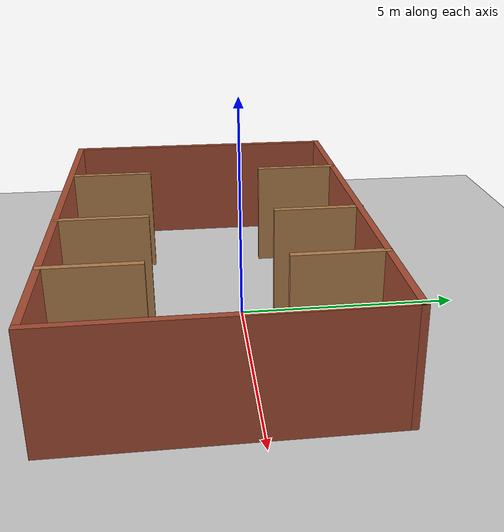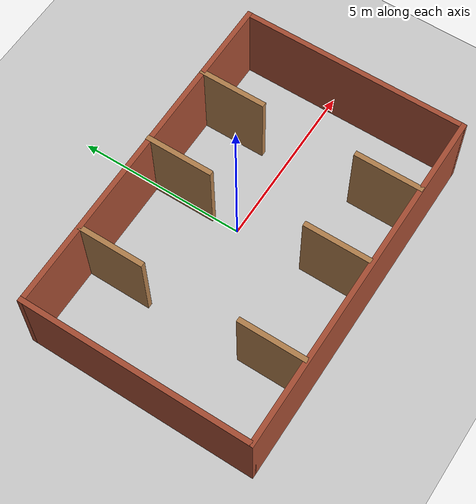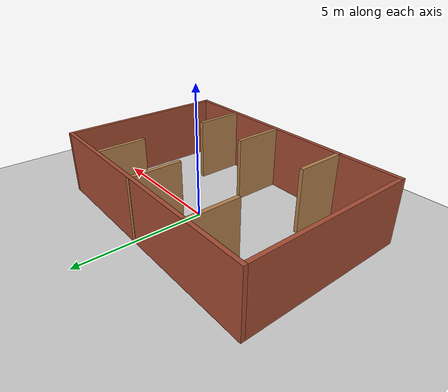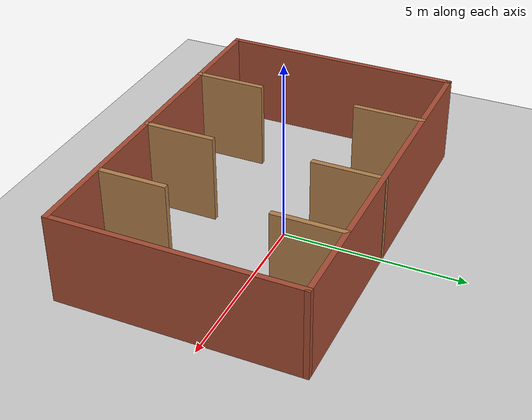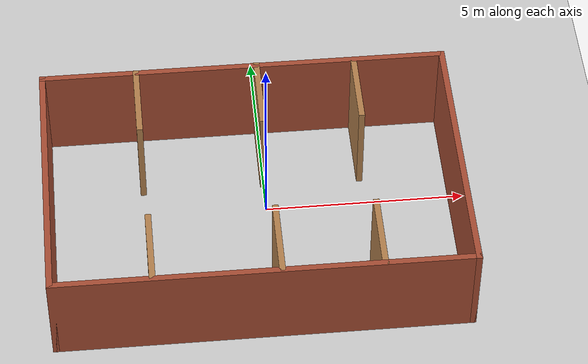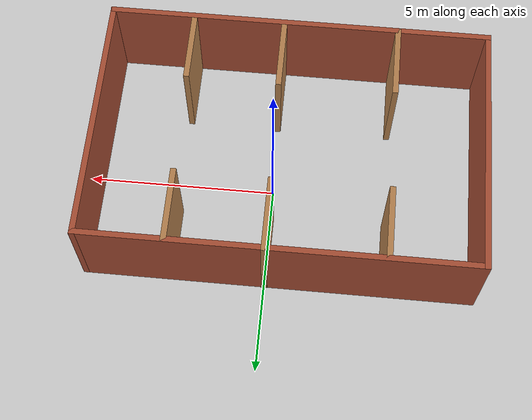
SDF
<sdf version="1.7">
 <world name="default">
  <light name="sun" type="directional">
   <pose>0 0 10 0 -0 0</pose>
   <diffuse>0.8 0.8 0.8 1</diffuse>
   <specular>0.2 0.2 0.2 1</specular>
   <attenuation>
    <range>1000</range>
    <constant>0.9</constant>
    <linear>0.01</linear>
    <quadratic>0.001</quadratic>
   </attenuation>
   <direction>-0.5 0.1 -0.9</direction>
   <spot><inner_angle>0</inner_angle><outer_angle>0</outer_angle><falloff>0</falloff></spot>
  </light>
  <model name="ground_plane">
   <static>1</static>
   <link name="link">
    <collision name="collision">
     <geometry><plane><normal>0 0 1</normal><size>100 100</size></plane></geometry>
     <surface>
      <contact><collide_bitmask>65535</collide_bitmask></contact>
      <friction><ode><mu>100</mu><mu2>50</mu2></ode></friction>
     </surface>
    </collision>
    <visual name="visual">
     <cast_shadows>0</cast_shadows>
     <geometry><plane><normal>0 0 1</normal><size>100 100</size></plane></geometry>
     <material>
      <script><uri>file://media/materials/scripts/gazebo.material</uri><name>Gazebo/Grey</name></script>
     </material>
    </visual>
   </link>
  </model>
  <gravity>0 0 -9.8</gravity>
  <magnetic_field>6e-06 2.3e-05 -4.2e-05</magnetic_field>
  <atmosphere type="adiabatic"/>
  <physics type="ode">
   <max_step_size>0.001</max_step_size>
   <real_time_factor>1</real_time_factor>
   <real_time_update_rate>1000</real_time_update_rate>
  </physics>
  <scene><ambient>0.4 0.4 0.4 1</ambient><background>0.7 0.7 0.7 1</background><shadows>1</shadows></scene>
  <spherical_coordinates>
   <surface_model>EARTH_WGS84</surface_model>
   <latitude_deg>0</latitude_deg>
   <longitude_deg>0</longitude_deg>
   <elevation>0</elevation>
   <heading_deg>0</heading_deg>
  </spherical_coordinates>
  <model name="hik-galeri">
   <pose>-0.362688 -0.634701 0 0 -0 0</pose>
   <link name="Wall_18">
    <collision name="Wall_18_Collision">
     <geometry><box><size>10.25 0.15 2.5</size></box></geometry>
     <pose>0 0 1.25 0 -0 0</pose>
    </collision>
    <visual name="Wall_18_Visual">
     <pose>0 0 1.25 0 -0 0</pose>
     <geometry><box><size>10.25 0.15 2.5</size></box></geometry>
     <material>
      <script><uri>file://media/materials/scripts/gazebo.material</uri><name>Gazebo/Bricks</name></script>
      <ambient>1 1 1 1</ambient>
     </material>
     <meta><layer>0</layer></meta>
    </visual>
    <pose>-0 -3.3059 0 0 -0 0</pose>
   </link>
   <link name="Wall_19">
    <collision name="Wall_19_Collision">
     <geometry><box><size>6.75 0.15 2.5</size></box></geometry>
     <pose>0 0 1.25 0 -0 0</pose>
    </collision>
    <visual name="Wall_19_Visual">
     <pose>0 0 1.25 0 -0 0</pose>
     <geometry><box><size>6.75 0.15 2.5</size></box></geometry>
     <material>
      <script><uri>file://media/materials/scripts/gazebo.material</uri><name>Gazebo/Bricks</name></script>
      <ambient>1 1 1 1</ambient>
     </material>
     <meta><layer>0</layer></meta>
    </visual>
    <pose>5.05 -0.0059 0 0 -0 1.5708</pose>
   </link>
   <link name="Wall_20">
    <collision name="Wall_20_Collision">
     <geometry><box><size>10.25 0.15 2.5</size></box></geometry>
     <pose>0 0 1.25 0 -0 0</pose>
    </collision>
    <visual name="Wall_20_Visual">
     <pose>0 0 1.25 0 -0 0</pose>
     <geometry><box><size>10.25 0.15 2.5</size></box></geometry>
     <material>
      <script><uri>file://media/materials/scripts/gazebo.material</uri><name>Gazebo/Bricks</name></script>
      <ambient>1 1 1 1</ambient>
     </material>
     <meta><layer>0</layer></meta>
    </visual>
    <pose>-0 3.2941 0 0 -0 3.14159</pose>
   </link>
   <link name="Wall_21">
    <collision name="Wall_21_Collision">
     <geometry><box><size>6.75 0.15 2.5</size></box></geometry>
     <pose>0 0 1.25 0 -0 0</pose>
    </collision>
    <visual name="Wall_21_Visual">
     <pose>0 0 1.25 0 -0 0</pose>
     <geometry><box><size>6.75 0.15 2.5</size></box></geometry>
     <material>
      <script><uri>file://media/materials/scripts/gazebo.material</uri><name>Gazebo/Bricks</name></script>
      <ambient>1 1 1 1</ambient>
     </material>
     <meta><layer>0</layer></meta>
    </visual>
    <pose>-5.05 -0.0059 0 0 -0 -1.5708</pose>
   </link>
   <link name="Wall_23">
    <collision name="Wall_23_Collision">
     <geometry><box><size>2 0.15 2.5</size></box></geometry>
     <pose>0 0 1.25 0 -0 0</pose>
    </collision>
    <visual name="Wall_23_Visual">
     <pose>0 0 1.25 0 -0 0</pose>
     <geometry><box><size>2 0.15 2.5</size></box></geometry>
     <material>
      <script><uri>file://media/materials/scripts/gazebo.material</uri><name>Gazebo/Wood</name></script>
      <ambient>1 1 1 1</ambient>
     </material>
     <meta><layer>0</layer></meta>
    </visual>
    <pose>2.80514 2.36431 0 0 -0 -1.5708</pose>
   </link>
   <link name="Wall_25">
    <collision name="Wall_25_Collision">
     <geometry><box><size>2 0.15 2.5</size></box></geometry>
     <pose>0 0 1.25 0 -0 0</pose>
    </collision>
    <visual name="Wall_25_Visual">
     <pose>0 0 1.25 0 -0 0</pose>
     <geometry><box><size>2 0.15 2.5</size></box></geometry>
     <material>
      <script><uri>file://media/materials/scripts/gazebo.material</uri><name>Gazebo/Wood</name></script>
      <ambient>1 1 1 1</ambient>
     </material>
     <meta><layer>0</layer></meta>
    </visual>
    <pose>2.83573 -2.36259 0 0 -0 1.5708</pose>
   </link>
   <link name="Wall_27">
    <collision name="Wall_27_Collision">
     <geometry><box><size>2 0.15 2.5</size></box></geometry>
     <pose>0 0 1.25 0 -0 0</pose>
    </collision>
    <visual name="Wall_27_Visual">
     <pose>0 0 1.25 0 -0 0</pose>
     <geometry><box><size>2 0.15 2.5</size></box></geometry>
     <material>
      <script><uri>file://media/materials/scripts/gazebo.material</uri><name>Gazebo/Wood</name></script>
      <ambient>1 1 1 1</ambient>
     </material>
     <meta><layer>0</layer></meta>
    </visual>
    <pose>0.346221 2.3809 0 0 -0 -1.5708</pose>
   </link>
   <link name="Wall_31">
    <collision name="Wall_31_Collision">
     <geometry><box><size>2 0.15 2.5</size></box></geometry>
     <pose>0 0 1.25 0 -0 0</pose>
    </collision>
    <visual name="Wall_31_Visual">
     <pose>0 0 1.25 0 -0 0</pose>
     <geometry><box><size>2 0.15 2.5</size></box></geometry>
     <material>
      <script><uri>file://media/materials/scripts/gazebo.material</uri><name>Gazebo/Wood</name></script>
      <ambient>1 1 1 1</ambient>
     </material>
     <meta><layer>0</layer></meta>
    </visual>
    <pose>-2.69839 2.36666 0 0 -0 -1.5708</pose>
   </link>
   <link name="Wall_33">
    <collision name="Wall_33_Collision">
     <geometry><box><size>2 0.15 2.5</size></box></geometry>
     <pose>0 0 1.25 0 -0 0</pose>
    </collision>
    <visual name="Wall_33_Visual">
     <pose>0 0 1.25 0 -0 0</pose>
     <geometry><box><size>2 0.15 2.5</size></box></geometry>
     <material>
      <script><uri>file://media/materials/scripts/gazebo.material</uri><name>Gazebo/Wood</name></script>
      <ambient>1 1 1 1</ambient>
     </material>
     <meta><layer>0</layer></meta>
    </visual>
    <pose>-2.64617 -2.35595 0 0 -0 1.5708</pose>
   </link>
   <link name="Wall_36">
    <collision name="Wall_36_Collision">
     <geometry><box><size>2 0.15 2.5</size></box></geometry>
     <pose>0 0 1.25 0 -0 0</pose>
    </collision>
    <visual name="Wall_36_Visual">
     <pose>0 0 1.25 0 -0 0</pose>
     <geometry><box><size>2 0.15 2.5</size></box></geometry>
     <material>
      <script><uri>file://media/materials/scripts/gazebo.material</uri><name>Gazebo/Wood</name></script>
      <ambient>1 1 1 1</ambient>
     </material>
     <meta><layer>0</layer></meta>
    </visual>
    <pose>0.406763 -2.33108 0 0 -0 1.5708</pose>
   </link>
   <static>1</static>
  </model>
 </world>
</sdf>
